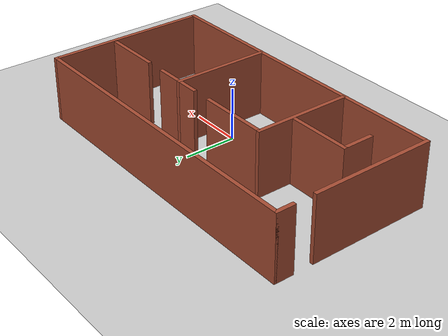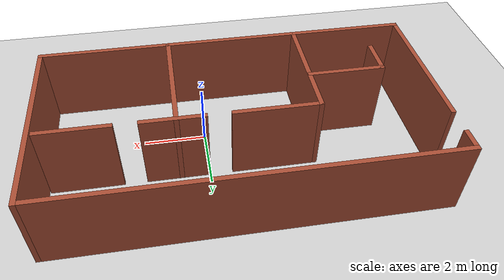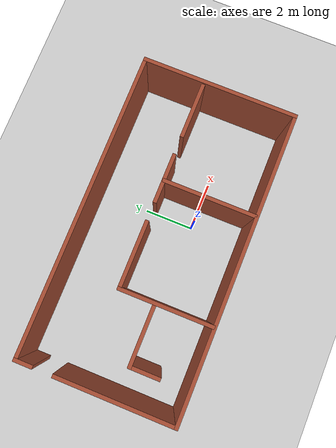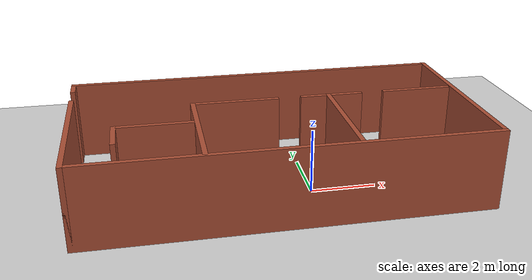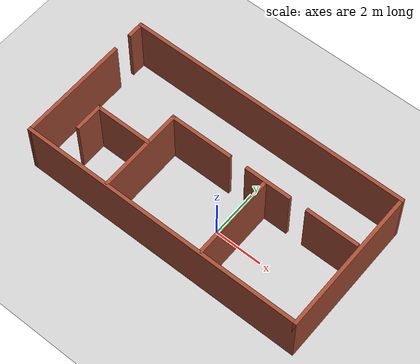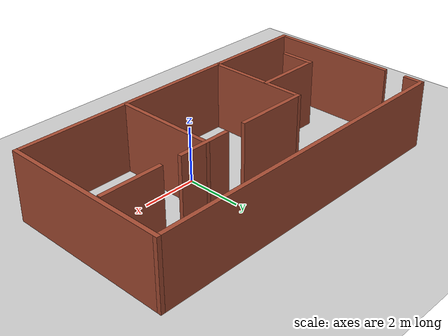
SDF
<sdf version="1.4">
 <world name="default">
  <include><uri>model://sun</uri></include>
  <include><uri>model://ground_plane</uri></include>
  <physics type="ode">
   <real_time_update_rate>1000.0</real_time_update_rate>
   <max_step_size>0.001</max_step_size>
   <real_time_factor>1</real_time_factor>
   <ode>
    <solver>
     <type>quick</type>
     <iters>150</iters>
     <precon_iters>0</precon_iters>
     <sor>1.400000</sor>
     <use_dynamic_moi_rescaling>1</use_dynamic_moi_rescaling>
    </solver>
    <constraints>
     <cfm>0.00001</cfm>
     <erp>0.2</erp>
     <contact_max_correcting_vel>2000.000000</contact_max_correcting_vel>
     <contact_surface_layer>0.01000</contact_surface_layer>
    </constraints>
   </ode>
  </physics>
  <include><uri>model://akb</uri><pose>-1.0 1.0 0.0 0 0 0</pose></include>
  <scene><ambient>0.4 0.4 0.4 1</ambient><background>0.7 0.7 0.7 1</background><shadows>true</shadows></scene>
 </world>
</sdf>

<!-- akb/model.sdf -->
<sdf version='1.6'>
  <model name='p3afp'>
    <pose frame=''>-0.672362 -3.15534 0 0 -0 0</pose>
    <link name='Wall_0'>
      <collision name='Wall_0_Collision'>
        <geometry>
          <box>
            <size>4.75 0.15 2.5</size>
          </box>
        </geometry>
        <pose frame=''>0 0 1.25 0 -0 0</pose>
      </collision>
      <visual name='Wall_0_Visual'>
        <pose frame=''>0 0 1.25 0 -0 0</pose>
        <geometry>
          <box>
            <size>4.75 0.15 2.5</size>
          </box>
        </geometry>
        <material>
          <script>
            <uri>file://media/materials/scripts/gazebo.material</uri>
            <name>Gazebo/Bricks</name>
          </script>
          <ambient>1 1 1 1</ambient>
        </material>
        <meta>
          <layer>0</layer>
        </meta>
      </visual>
      <pose frame=''>-6.05 -0.75 0 0 -0 -1.5708</pose>
    </link>
    <link name='Wall_1'>
      <collision name='Wall_1_Collision'>
        <geometry>
          <box>
            <size>12.25 0.15 2.5</size>
          </box>
        </geometry>
        <pose frame=''>0 0 1.25 0 -0 0</pose>
      </collision>
      <visual name='Wall_1_Visual'>
        <pose frame=''>0 0 1.25 0 -0 0</pose>
        <geometry>
          <box>
            <size>12.25 0.15 2.5</size>
          </box>
        </geometry>
        <material>
          <script>
            <uri>file://media/materials/scripts/gazebo.material</uri>
            <name>Gazebo/Bricks</name>
          </script>
          <ambient>1 1 1 1</ambient>
        </material>
        <meta>
          <layer>0</layer>
        </meta>
      </visual>
      <pose frame=''>0 -3.05 0 0 -0 0</pose>
    </link>
    <link name='Wall_11'>
      <collision name='Wall_11_Collision'>
        <geometry>
          <box>
            <size>2.25 0.15 2.5</size>
          </box>
        </geometry>
        <pose frame=''>0 0 1.25 0 -0 0</pose>
      </collision>
      <visual name='Wall_11_Visual'>
        <pose frame=''>0 0 1.25 0 -0 0</pose>
        <geometry>
          <box>
            <size>2.25 0.15 2.5</size>
          </box>
        </geometry>
        <material>
          <script>
            <uri>file://media/materials/scripts/gazebo.material</uri>
            <name>Gazebo/Bricks</name>
          </script>
          <ambient>1 1 1 1</ambient>
        </material>
        <meta>
          <layer>0</layer>
        </meta>
      </visual>
      <pose frame=''>4.81067 0.624446 0 0 -0 0</pose>
    </link>
    <link name='Wall_13'>
      <collision name='Wall_13_Collision'>
        <geometry>
          <box>
            <size>3.75 0.15 2.5</size>
          </box>
        </geometry>
        <pose frame=''>0 0 1.25 0 -0 0</pose>
      </collision>
      <visual name='Wall_13_Visual'>
        <pose frame=''>0 0 1.25 0 -0 0</pose>
        <geometry>
          <box>
            <size>3.75 0.15 2.5</size>
          </box>
        </geometry>
        <material>
          <script>
            <uri>file://media/materials/scripts/gazebo.material</uri>
            <name>Gazebo/Bricks</name>
          </script>
          <ambient>1 1 1 1</ambient>
        </material>
        <meta>
          <layer>0</layer>
        </meta>
      </visual>
      <pose frame=''>1.89486 -1.17522 0 0 -0 -1.5708</pose>
    </link>
    <link name='Wall_17'>
      <collision name='Wall_17_Collision'>
        <geometry>
          <box>
            <size>1.25 0.15 2.5</size>
          </box>
        </geometry>
        <pose frame=''>0 0 1.25 0 -0 0</pose>
      </collision>
      <visual name='Wall_17_Visual'>
        <pose frame=''>0 0 1.25 0 -0 0</pose>
        <geometry>
          <box>
            <size>1.25 0.15 2.5</size>
          </box>
        </geometry>
        <material>
          <script>
            <uri>file://media/materials/scripts/gazebo.material</uri>
            <name>Gazebo/Bricks</name>
          </script>
          <ambient>1 1 1 1</ambient>
        </material>
        <meta>
          <layer>0</layer>
        </meta>
      </visual>
      <pose frame=''>-4.76273 -1.31931 0 0 -0 1.5708</pose>
    </link>
    <link name='Wall_18'>
      <collision name='Wall_18_Collision'>
        <geometry>
          <box>
            <size>2.5 0.15 2.5</size>
          </box>
        </geometry>
        <pose frame=''>0 0 1.25 0 -0 0</pose>
      </collision>
      <visual name='Wall_18_Visual'>
        <pose frame=''>0 0 1.25 0 -0 0</pose>
        <geometry>
          <box>
            <size>2.5 0.15 2.5</size>
          </box>
        </geometry>
        <material>
          <script>
            <uri>file://media/materials/scripts/gazebo.material</uri>
            <name>Gazebo/Bricks</name>
          </script>
          <ambient>1 1 1 1</ambient>
        </material>
        <meta>
          <layer>0</layer>
        </meta>
      </visual>
      <pose frame=''>-3.58773 -0.769307 0 0 -0 0</pose>
    </link>
    <link name='Wall_2'>
      <collision name='Wall_2_Collision'>
        <geometry>
          <box>
            <size>6.25 0.15 2.5</size>
          </box>
        </geometry>
        <pose frame=''>0 0 1.25 0 -0 0</pose>
      </collision>
      <visual name='Wall_2_Visual'>
        <pose frame=''>0 0 1.25 0 -0 0</pose>
        <geometry>
          <box>
            <size>6.25 0.15 2.5</size>
          </box>
        </geometry>
        <material>
          <script>
            <uri>file://media/materials/scripts/gazebo.material</uri>
            <name>Gazebo/Bricks</name>
          </script>
          <ambient>1 1 1 1</ambient>
        </material>
        <meta>
          <layer>0</layer>
        </meta>
      </visual>
      <pose frame=''>6.05 0 0 0 -0 1.5708</pose>
    </link>
    <link name='Wall_3'>
      <collision name='Wall_3_Collision'>
        <geometry>
          <box>
            <size>12.25 0.15 2.5</size>
          </box>
        </geometry>
        <pose frame=''>0 0 1.25 0 -0 0</pose>
      </collision>
      <visual name='Wall_3_Visual'>
        <pose frame=''>0 0 1.25 0 -0 0</pose>
        <geometry>
          <box>
            <size>12.25 0.15 2.5</size>
          </box>
        </geometry>
        <material>
          <script>
            <uri>file://media/materials/scripts/gazebo.material</uri>
            <name>Gazebo/Bricks</name>
          </script>
          <ambient>1 1 1 1</ambient>
        </material>
        <meta>
          <layer>0</layer>
        </meta>
      </visual>
      <pose frame=''>0 3.05 0 0 -0 3.14159</pose>
    </link>
    <link name='Wall_4'>
      <collision name='Wall_4_Collision'>
        <geometry>
          <box>
            <size>0.75 0.15 2.5</size>
          </box>
        </geometry>
        <pose frame=''>0 0 1.25 0 -0 0</pose>
      </collision>
      <visual name='Wall_4_Visual'>
        <pose frame=''>0 0 1.25 0 -0 0</pose>
        <geometry>
          <box>
            <size>0.75 0.15 2.5</size>
          </box>
        </geometry>
        <material>
          <script>
            <uri>file://media/materials/scripts/gazebo.material</uri>
            <name>Gazebo/Bricks</name>
          </script>
          <ambient>1 1 1 1</ambient>
        </material>
        <meta>
          <layer>0</layer>
        </meta>
      </visual>
      <pose frame=''>-6.05 2.75 0 0 -0 -1.5708</pose>
    </link>
    <link name='Wall_6'>
      <collision name='Wall_6_Collision'>
        <geometry>
          <box>
            <size>3.75 0.15 2.5</size>
          </box>
        </geometry>
        <pose frame=''>0 0 1.25 0 -0 0</pose>
      </collision>
      <visual name='Wall_6_Visual'>
        <pose frame=''>0 0 1.25 0 -0 0</pose>
        <geometry>
          <box>
            <size>3.75 0.15 2.5</size>
          </box>
        </geometry>
        <material>
          <script>
            <uri>file://media/materials/scripts/gazebo.material</uri>
            <name>Gazebo/Bricks</name>
          </script>
          <ambient>1 1 1 1</ambient>
        </material>
        <meta>
          <layer>0</layer>
        </meta>
      </visual>
      <pose frame=''>-2.38933 -1.17555 0 0 -0 1.5708</pose>
    </link>
    <link name='Wall_7'>
      <collision name='Wall_7_Collision'>
        <geometry>
          <box>
            <size>2.75 0.15 2.5</size>
          </box>
        </geometry>
        <pose frame=''>0 0 1.25 0 -0 0</pose>
      </collision>
      <visual name='Wall_7_Visual'>
        <pose frame=''>0 0 1.25 0 -0 0</pose>
        <geometry>
          <box>
            <size>2.75 0.15 2.5</size>
          </box>
        </geometry>
        <material>
          <script>
            <uri>file://media/materials/scripts/gazebo.material</uri>
            <name>Gazebo/Bricks</name>
          </script>
          <ambient>1 1 1 1</ambient>
        </material>
        <meta>
          <layer>0</layer>
        </meta>
      </visual>
      <pose frame=''>-1.08933 0.624446 0 0 -0 0</pose>
    </link>
    <link name='Wall_9'>
      <collision name='Wall_9_Collision'>
        <geometry>
          <box>
            <size>2 0.15 2.5</size>
          </box>
        </geometry>
        <pose frame=''>0 0 1.25 0 -0 0</pose>
      </collision>
      <visual name='Wall_9_Visual'>
        <pose frame=''>0 0 1.25 0 -0 0</pose>
        <geometry>
          <box>
            <size>2 0.15 2.5</size>
          </box>
        </geometry>
        <material>
          <script>
            <uri>file://media/materials/scripts/gazebo.material</uri>
            <name>Gazebo/Bricks</name>
          </script>
          <ambient>1 1 1 1</ambient>
        </material>
        <meta>
          <layer>0</layer>
        </meta>
      </visual>
      <pose frame=''>1.98567 0.624446 0 0 -0 0</pose>
    </link>
    <static>1</static>
  </model>
</sdf>
